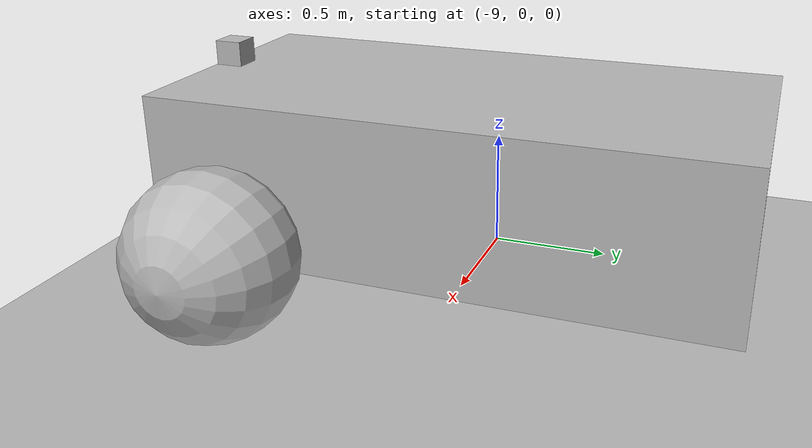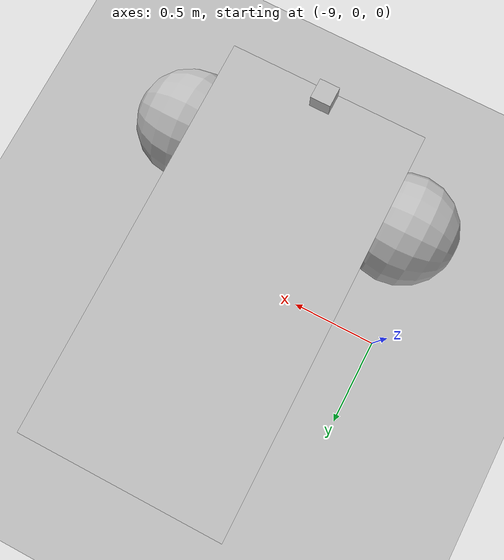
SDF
<?xml version="1.0"?>
<sdf version="1.6">
  <world name="default">

<model name="ground">
      <pose>0 0 0 0 0 0</pose>
      <static>1</static>
      <link name="ground">
        <collision name="ground_coll">
          <geometry>
            <box>
              <size>30 30 .05</size> <!-- box size -->
            </box>
          </geometry>
          <surface>
            <contact>
              <ode/>
            </contact>
          </surface>
        </collision>
        <visual name="ground_vis">
          <geometry>
            <box>
              <size>30 30 .05</size>
            </box>
          </geometry>
          <material>
            <script>
              <uri> ./course.material </uri>  <!-- file://course.material -->
              <name>course</name>
            </script>
          </material>
        </visual>
      </link>
    </model>

    <include>
      <uri>model://sun</uri>
    </include>

    <model name='vehicle'>
      <!-- my_course1.png: -5.2 0 0.5 0 0 -1.57 -->
      <!-- my_course2.png: -8.2 0 0.5 0 0 -1.57 -->
      <!-- course.png: 0 -6.5 0.5 0 0 0.18 -->
      <!-- yaw: 1.57 rad = 90 degrees, 0.18 rad = 10.3132 degrees -->
      <pose>-8.2 0 0.5 0 0 -1.57</pose>

      <link name='chassis'>
        <pose>-0.151427 -0 0.175 0 -0 0</pose>
        <inertial>
          <mass>1.14395</mass>
          <inertia>
            <ixx>0.126164</ixx>
            <ixy>0</ixy>
            <ixz>0</ixz>
            <iyy>0.416519</iyy>
            <iyz>0</iyz>
            <izz>0.481014</izz>
          </inertia>
        </inertial>
        <visual name='visual'>
          <geometry>
            <box>
              <size>2.01142 1 0.568726</size>
            </box>
          </geometry>
        </visual>
        <collision name='collision'>
          <geometry>
            <box>
              <size>2.01142 1 0.568726</size>
            </box>
          </geometry>
        </collision>
      </link>

      <link name='left_wheel'>
        <pose>0.554283 0.625029 -0.025 -1.5707 0 0</pose>
        <inertial>
          <mass>2</mass>
          <inertia>
            <ixx>0.145833</ixx>
            <ixy>0</ixy>
            <ixz>0</ixz>
            <iyy>0.145833</iyy>
            <iyz>0</iyz>
            <izz>0.125</izz>
          </inertia>
        </inertial>
        <visual name='visual'>
          <geometry>
            <sphere>
              <radius>0.3</radius>
            </sphere>
          </geometry>
        </visual>
        <collision name='collision'>
          <geometry>
            <sphere>
              <radius>0.3</radius>
            </sphere>
          </geometry>
          <surface>
            <friction>
              <ode>
                <mu>1</mu>
                <mu2>1</mu2>
                <slip1>0</slip1>
                <slip2>0</slip2>
              </ode>
            </friction>
            <contact>
              <ode>
                <soft_cfm>0</soft_cfm>
                <soft_erp>0.2</soft_erp>
                <kp>1e+13</kp>
                <kd>1</kd>
                <max_vel>0.01</max_vel>
                <min_depth>0.01</min_depth>
              </ode>
            </contact>
          </surface>
        </collision>
      </link>

      <link name='right_wheel'>
        <pose>0.554282 -0.625029 -0.025 -1.5707 0 0</pose>
        <inertial>
          <mass>2</mass>
          <inertia>
            <ixx>0.145833</ixx>
            <ixy>0</ixy>
            <ixz>0</ixz>
            <iyy>0.145833</iyy>
            <iyz>0</iyz>
            <izz>0.125</izz>
          </inertia>
        </inertial>
        <visual name='visual'>
          <geometry>
            <sphere>
              <radius>0.3</radius>
            </sphere>
          </geometry>
        </visual>
        <collision name='collision'>
          <geometry>
            <sphere>
              <radius>0.3</radius>
            </sphere>
          </geometry>
          <surface>
            <friction>
              <ode>
                <mu>1</mu>
                <mu2>1</mu2>
                <slip1>0</slip1>
                <slip2>0</slip2>
              </ode>
            </friction>
            <contact>
              <ode>
                <soft_cfm>0</soft_cfm>
                <soft_erp>0.2</soft_erp>
                <kp>1e+13</kp>
                <kd>1</kd>
                <max_vel>0.01</max_vel>
                <min_depth>0.01</min_depth>
              </ode>
            </contact>
          </surface>
        </collision>
      </link>

      <link name='caster'>
        <pose>-0.957138 -0 -0.125 0 -0 0</pose>
        <inertial>
          <mass>1</mass>
          <inertia>
            <ixx>0.1</ixx>
            <ixy>0</ixy>
            <ixz>0</ixz>
            <iyy>0.1</iyy>
            <iyz>0</iyz>
            <izz>0.1</izz>
          </inertia>
        </inertial>
        <visual name='visual'>
          <geometry>
            <sphere>
              <radius>0.2</radius>
            </sphere>
          </geometry>
        </visual>
        <collision name='collision'>
          <geometry>
            <sphere>
              <radius>0.2</radius>
            </sphere>
          </geometry>
        </collision>
      </link>

      <joint name='left_wheel_joint' type='revolute'>
        <parent>chassis</parent>
        <child>left_wheel</child>
        <axis>
          <xyz>0 0 1</xyz>
          <limit>
            <lower>-1.79769e+308</lower>
            <upper>1.79769e+308</upper>
          </limit>
        </axis>
      </joint>

      <joint name='right_wheel_joint' type='revolute'>
        <parent>chassis</parent>
        <child>right_wheel</child>
        <axis>
          <xyz>0 0 1</xyz>
          <limit>
            <lower>-1.79769e+308</lower>
            <upper>1.79769e+308</upper>
          </limit>
        </axis>
      </joint>

      <joint name='caster_wheel' type='ball'>
        <parent>chassis</parent>
        <child>caster</child>
      </joint>

      <link name="camera_link">	<!-- 카메라 모양 -->
      <pose>0.8 0 0.5 0 0 0</pose>  <!-- x: 0.8m, y, z: 50cm 위로 카메라가 있다  -->
          <visual name='visual'>
          <geometry>
            <box>
              <size>0.1 0.1 0.1</size>   <!-- 0.1 x 0.1 x 0.1 세제곱미터 육면체로 카메라 모양을 알려줌 -->
            </box>
          </geometry>
        </visual>
      </link>

        <link name="camera_rgb_optical_frame">   <!-- 카메라 센서 연결  -->
            <inertial>
                <pose>0 0 0 0 0 0</pose>
                <inertia>
                    <ixx>0.001</ixx>
                    <ixy>0.000</ixy>
                    <ixz>0.000</ixz>
                    <iyy>0.001</iyy>
                    <iyz>0.000</iyz>
                    <izz>0.001</izz>
                </inertia>
                <mass>0.035</mass>
            </inertial>

            <pose>0.8 0 0.5 0 0.1745 0</pose>
            <sensor name="camera1" type="camera">
                <always_on>true</always_on>
                <visualize>true</visualize>
                <update_rate>10</update_rate>
                <camera name="picam">
                    <horizontal_fov>1.085595</horizontal_fov>
                    <image>
                        <width>640</width>
                        <height>480</height>
                        <format>R8G8B8</format>
                    </image>
                    <clip>
                        <near>0.03</near>
                        <far>100</far>
                    </clip>
                    <noise>
                        <type>gaussian</type>
                        <mean>0.0</mean>
                        <stddev>0.007</stddev>
                    </noise>
                </camera>
                <plugin name="camera_driver" filename="libgazebo_ros_camera.so">
                    <!-- ros -->
                    <!-- /ros -->
                </plugin>
            </sensor>
        </link>

        <joint name="camera_joint" type="fixed">
            <parent>chassis</parent>
            <child>camera_link</child>
            <pose>0.0 0 0.0 0 0 0</pose>
            <axis>
                <xyz>0 0 1</xyz>
            </axis>
        </joint>

        <joint name="camera_rgb_joint" type="fixed">
            <parent>camera_link</parent>
            <child>camera_rgb_optical_frame</child>
            <pose>0 0 0 0 0 0</pose>
            <axis>
                <xyz>0 0 1</xyz>
            </axis>
        </joint>

      <plugin name='diff_drive' filename='libgazebo_ros_diff_drive.so'>

        <ros>
          <namespace>/demo</namespace> <!-- topic 이름 -->
          <remapping>cmd_vel:=cmd_demo</remapping>
          <remapping>odom:=odom_demo</remapping>
        </ros>

        <!-- wheels -->
        <left_joint>left_wheel_joint</left_joint>
        <right_joint>right_wheel_joint</right_joint>

        <!-- kinematics -->
        <wheel_separation>1.25</wheel_separation>
        <wheel_diameter>0.6</wheel_diameter>

        <!-- limits -->
        <max_wheel_torque>20</max_wheel_torque>
        <max_wheel_acceleration>1.0</max_wheel_acceleration>

        <!-- output -->
        <publish_odom>true</publish_odom>
        <publish_odom_tf>true</publish_odom_tf>
        <publish_wheel_tf>true</publish_wheel_tf>

        <odometry_frame>odom_demo</odometry_frame>
        <robot_base_frame>chassis</robot_base_frame>

      </plugin>

    </model>

  </world>
</sdf>
